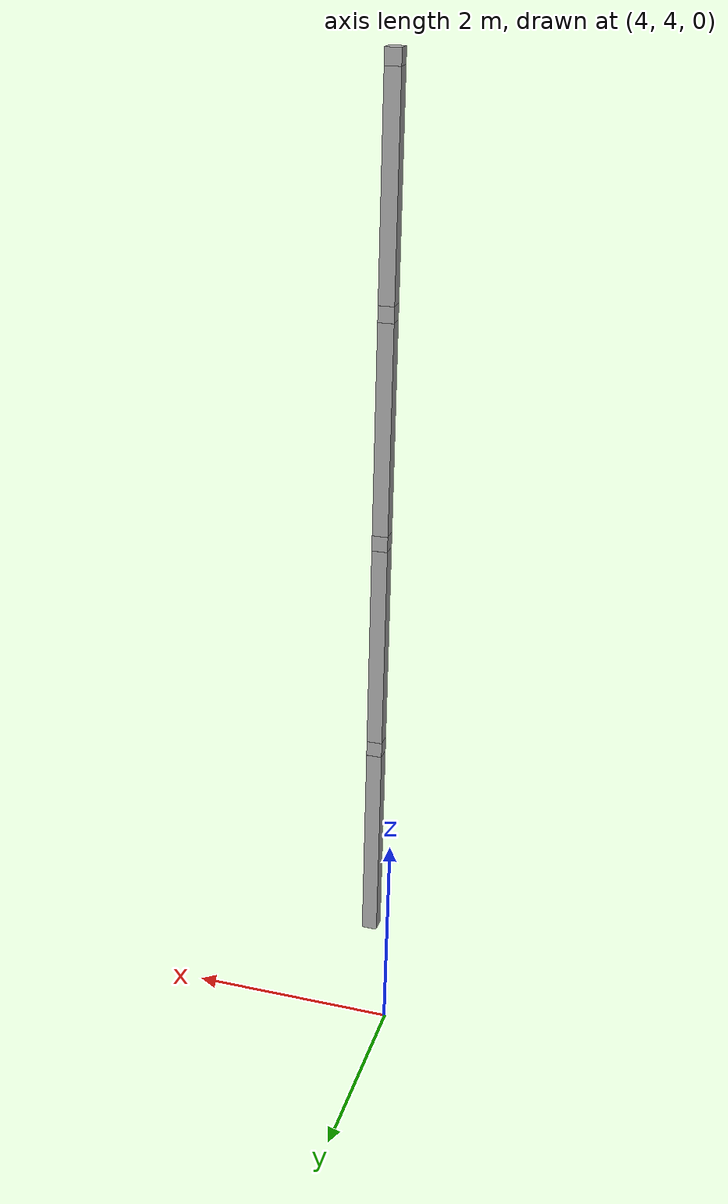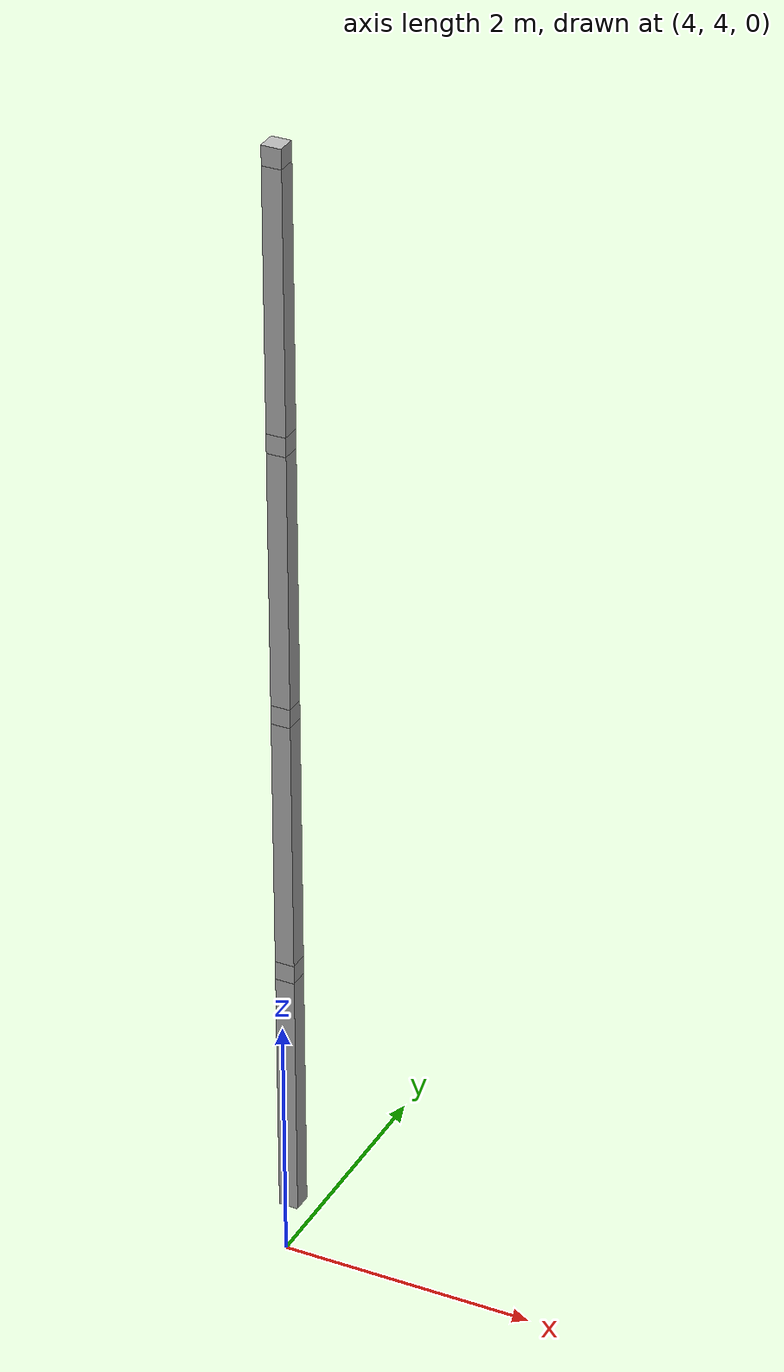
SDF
<sdf version="1.7">
 <world name="default">
  <model name="orthogonal_747_2.000.15_TS">
   <static>1</static>
   <link name="u_link_2_4_5">
    <inertial>
     <mass>1</mass>
     <inertia>
      <ixx>0.166667</ixx>
      <ixy>0</ixy>
      <ixz>0</ixz>
      <iyy>0.166667</iyy>
      <iyz>0</iyz>
      <izz>0.166667</izz>
     </inertia>
    </inertial>
    <pose>10.75 8.6 5.375 0 -0 0</pose>
    <visual name="visual_0">
     <laser_retro>2507</laser_retro>
     <geometry><box><size>0.15 1e-06 0.15</size></box></geometry>
     <material>
      <script><name>Gazebo/Grey</name><uri>file://media/materials/scripts/gazebo.material</uri></script>
      <shader type="pixel"><normal_map>__default__</normal_map></shader>
      <ambient>0.678 0.498 0.659 1</ambient>
      <diffuse>0.7 0.7 0.7 1</diffuse>
      <specular>0.01 0.01 0.01 1</specular>
      <emissive>0 0 0 1</emissive>
     </material>
     <pose>0 -0.075 0 0 -0 0</pose>
     <transparency>1</transparency>
    </visual>
    <visual name="visual_1">
     <laser_retro>2508</laser_retro>
     <geometry><box><size>0.15 1e-06 0.15</size></box></geometry>
     <material>
      <script><name>Gazebo/Grey</name><uri>file://media/materials/scripts/gazebo.material</uri></script>
      <shader type="pixel"><normal_map>__default__</normal_map></shader>
      <ambient>0.447 0.624 0.812 1</ambient>
      <diffuse>0.7 0.7 0.7 1</diffuse>
      <specular>0.01 0.01 0.01 1</specular>
      <emissive>0 0 0 1</emissive>
     </material>
     <pose>0 0.075 0 0 -0 0</pose>
     <transparency>1</transparency>
    </visual>
    <visual name="visual_2">
     <laser_retro>2509</laser_retro>
     <geometry><box><size>0.15 0.15 1e-06</size></box></geometry>
     <material>
      <script><name>Gazebo/Grey</name><uri>file://media/materials/scripts/gazebo.material</uri></script>
      <shader type="pixel"><normal_map>__default__</normal_map></shader>
      <ambient>0.988 0.686 0.243 1</ambient>
      <diffuse>0.7 0.7 0.7 1</diffuse>
      <specular>0.01 0.01 0.01 1</specular>
      <emissive>0 0 0 1</emissive>
     </material>
     <pose>0 0 -0.075 0 -0 0</pose>
     <transparency>1</transparency>
    </visual>
    <visual name="visual_3">
     <laser_retro>2510</laser_retro>
     <geometry><box><size>1e-06 0.15 0.15</size></box></geometry>
     <material>
      <script><name>Gazebo/Grey</name><uri>file://media/materials/scripts/gazebo.material</uri></script>
      <shader type="pixel"><normal_map>__default__</normal_map></shader>
      <ambient>0.988 0.914 0.31 1</ambient>
      <diffuse>0.7 0.7 0.7 1</diffuse>
      <specular>0.01 0.01 0.01 1</specular>
      <emissive>0 0 0 1</emissive>
     </material>
     <pose>0.075 0 0 0 -0 0</pose>
     <transparency>1</transparency>
    </visual>
    <visual name="visual_4">
     <laser_retro>2511</laser_retro>
     <geometry><box><size>0.15 0.15 1e-06</size></box></geometry>
     <material>
      <script><name>Gazebo/Grey</name><uri>file://media/materials/scripts/gazebo.material</uri></script>
      <shader type="pixel"><normal_map>__default__</normal_map></shader>
      <ambient>0.937 0.161 0.161 1</ambient>
      <diffuse>0.7 0.7 0.7 1</diffuse>
      <specular>0.01 0.01 0.01 1</specular>
      <emissive>0 0 0 1</emissive>
     </material>
     <pose>0 0 0.075 0 -0 0</pose>
     <transparency>1</transparency>
    </visual>
    <visual name="visual_5">
     <laser_retro>2512</laser_retro>
     <geometry><box><size>1e-06 0.15 0.15</size></box></geometry>
     <material>
      <script><name>Gazebo/Grey</name><uri>file://media/materials/scripts/gazebo.material</uri></script>
      <shader type="pixel"><normal_map>__default__</normal_map></shader>
      <ambient>0.541 0.886 0.204 1</ambient>
      <diffuse>0.7 0.7 0.7 1</diffuse>
      <specular>0.01 0.01 0.01 1</specular>
      <emissive>0 0 0 1</emissive>
     </material>
     <pose>-0.075 0 0 0 -0 0</pose>
     <transparency>1</transparency>
    </visual>
    <visual name="visual_texture">
     <geometry><box><size>0.149985 0.149985 0.149985</size></box></geometry>
     <material>
      <script>
       <uri>model://BASE_MODELS/simple_block_v2_textured/materials/scripts</uri>
       <uri>model://BASE_MODELS/simple_block_v2_textured/materials/textures</uri>
       <name>metal</name>
      </script>
     </material>
     <laser_retro>2513</laser_retro>
    </visual>
    <collision name="collision">
     <geometry><box><size>0.15 0.15 0.15</size></box></geometry>
     <surface>
      <friction>
       <ode><mu>1</mu><mu2>1</mu2><fdir1>0 0 0</fdir1><slip1>0</slip1><slip2>0</slip2></ode>
       <torsional>
        <coefficient>1</coefficient>
        <patch_radius>0</patch_radius>
        <surface_radius>0</surface_radius>
        <use_patch_radius>1</use_patch_radius>
        <ode><slip>0</slip></ode>
       </torsional>
      </friction>
      <bounce><restitution_coefficient>0</restitution_coefficient><threshold>1e+06</threshold></bounce>
      <contact>
       <collide_without_contact>0</collide_without_contact>
       <collide_without_contact_bitmask>1</collide_without_contact_bitmask>
       <collide_bitmask>1</collide_bitmask>
       <ode>
        <soft_cfm>0</soft_cfm>
        <soft_erp>0.2</soft_erp>
        <kp>1e+13</kp>
        <kd>1</kd>
        <max_vel>0.01</max_vel>
        <min_depth>0</min_depth>
       </ode>
       <bullet>
        <split_impulse>1</split_impulse>
        <split_impulse_penetration_threshold>-0.01</split_impulse_penetration_threshold>
        <soft_cfm>0</soft_cfm>
        <soft_erp>0.2</soft_erp>
        <kp>1e+13</kp>
        <kd>1</kd>
       </bullet>
      </contact>
     </surface>
    </collision>
   </link>
   <link name="z_link_2_4_5">
    <inertial>
     <mass>1</mass>
     <inertia>
      <ixx>0.166667</ixx>
      <ixy>0</ixy>
      <ixz>0</ixz>
      <iyy>0.166667</iyy>
      <iyz>0</iyz>
      <izz>0.166667</izz>
     </inertia>
    </inertial>
    <pose>10.75 8.6 4.3 0 -0 0</pose>
    <visual name="visual_0">
     <laser_retro>2514</laser_retro>
     <geometry><box><size>0.15 1e-06 2</size></box></geometry>
     <material>
      <script><name>Gazebo/Grey</name><uri>file://media/materials/scripts/gazebo.material</uri></script>
      <shader type="pixel"><normal_map>__default__</normal_map></shader>
      <ambient>0.678 0.498 0.659 1</ambient>
      <diffuse>0.7 0.7 0.7 1</diffuse>
      <specular>0.01 0.01 0.01 1</specular>
      <emissive>0 0 0 1</emissive>
     </material>
     <pose>0 -0.075 0 0 -0 0</pose>
     <transparency>1</transparency>
    </visual>
    <visual name="visual_1">
     <laser_retro>2515</laser_retro>
     <geometry><box><size>0.15 1e-06 2</size></box></geometry>
     <material>
      <script><name>Gazebo/Grey</name><uri>file://media/materials/scripts/gazebo.material</uri></script>
      <shader type="pixel"><normal_map>__default__</normal_map></shader>
      <ambient>0.447 0.624 0.812 1</ambient>
      <diffuse>0.7 0.7 0.7 1</diffuse>
      <specular>0.01 0.01 0.01 1</specular>
      <emissive>0 0 0 1</emissive>
     </material>
     <pose>0 0.075 0 0 -0 0</pose>
     <transparency>1</transparency>
    </visual>
    <visual name="visual_2">
     <laser_retro>2516</laser_retro>
     <geometry><box><size>0.15 0.15 1e-06</size></box></geometry>
     <material>
      <script><name>Gazebo/Grey</name><uri>file://media/materials/scripts/gazebo.material</uri></script>
      <shader type="pixel"><normal_map>__default__</normal_map></shader>
      <ambient>0.988 0.686 0.243 1</ambient>
      <diffuse>0.7 0.7 0.7 1</diffuse>
      <specular>0.01 0.01 0.01 1</specular>
      <emissive>0 0 0 1</emissive>
     </material>
     <pose>0 0 -1 0 -0 0</pose>
     <transparency>1</transparency>
    </visual>
    <visual name="visual_3">
     <laser_retro>2517</laser_retro>
     <geometry><box><size>1e-06 0.15 2</size></box></geometry>
     <material>
      <script><name>Gazebo/Grey</name><uri>file://media/materials/scripts/gazebo.material</uri></script>
      <shader type="pixel"><normal_map>__default__</normal_map></shader>
      <ambient>0.988 0.914 0.31 1</ambient>
      <diffuse>0.7 0.7 0.7 1</diffuse>
      <specular>0.01 0.01 0.01 1</specular>
      <emissive>0 0 0 1</emissive>
     </material>
     <pose>0.075 0 0 0 -0 0</pose>
     <transparency>1</transparency>
    </visual>
    <visual name="visual_4">
     <laser_retro>2518</laser_retro>
     <geometry><box><size>0.15 0.15 1e-06</size></box></geometry>
     <material>
      <script><name>Gazebo/Grey</name><uri>file://media/materials/scripts/gazebo.material</uri></script>
      <shader type="pixel"><normal_map>__default__</normal_map></shader>
      <ambient>0.937 0.161 0.161 1</ambient>
      <diffuse>0.7 0.7 0.7 1</diffuse>
      <specular>0.01 0.01 0.01 1</specular>
      <emissive>0 0 0 1</emissive>
     </material>
     <pose>0 0 1 0 -0 0</pose>
     <transparency>1</transparency>
    </visual>
    <visual name="visual_5">
     <laser_retro>2519</laser_retro>
     <geometry><box><size>1e-06 0.15 2</size></box></geometry>
     <material>
      <script><name>Gazebo/Grey</name><uri>file://media/materials/scripts/gazebo.material</uri></script>
      <shader type="pixel"><normal_map>__default__</normal_map></shader>
      <ambient>0.541 0.886 0.204 1</ambient>
      <diffuse>0.7 0.7 0.7 1</diffuse>
      <specular>0.01 0.01 0.01 1</specular>
      <emissive>0 0 0 1</emissive>
     </material>
     <pose>-0.075 0 0 0 -0 0</pose>
     <transparency>1</transparency>
    </visual>
    <visual name="visual_texture">
     <geometry><box><size>0.149985 0.149985 1.9998</size></box></geometry>
     <material>
      <script>
       <uri>model://BASE_MODELS/simple_block_v2_textured/materials/scripts</uri>
       <uri>model://BASE_MODELS/simple_block_v2_textured/materials/textures</uri>
       <name>metal</name>
      </script>
     </material>
     <laser_retro>2520</laser_retro>
    </visual>
    <collision name="collision">
     <geometry><box><size>0.15 0.15 2</size></box></geometry>
     <surface>
      <friction>
       <ode><mu>1</mu><mu2>1</mu2><fdir1>0 0 0</fdir1><slip1>0</slip1><slip2>0</slip2></ode>
       <torsional>
        <coefficient>1</coefficient>
        <patch_radius>0</patch_radius>
        <surface_radius>0</surface_radius>
        <use_patch_radius>1</use_patch_radius>
        <ode><slip>0</slip></ode>
       </torsional>
      </friction>
      <bounce><restitution_coefficient>0</restitution_coefficient><threshold>1e+06</threshold></bounce>
      <contact>
       <collide_without_contact>0</collide_without_contact>
       <collide_without_contact_bitmask>1</collide_without_contact_bitmask>
       <collide_bitmask>1</collide_bitmask>
       <ode>
        <soft_cfm>0</soft_cfm>
        <soft_erp>0.2</soft_erp>
        <kp>1e+13</kp>
        <kd>1</kd>
        <max_vel>0.01</max_vel>
        <min_depth>0</min_depth>
       </ode>
       <bullet>
        <split_impulse>1</split_impulse>
        <split_impulse_penetration_threshold>-0.01</split_impulse_penetration_threshold>
        <soft_cfm>0</soft_cfm>
        <soft_erp>0.2</soft_erp>
        <kp>1e+13</kp>
        <kd>1</kd>
       </bullet>
      </contact>
     </surface>
    </collision>
   </link>
   <link name="u_link_3_4_5">
    <inertial>
     <mass>1</mass>
     <inertia>
      <ixx>0.166667</ixx>
      <ixy>0</ixy>
      <ixz>0</ixz>
      <iyy>0.166667</iyy>
      <iyz>0</iyz>
      <izz>0.166667</izz>
     </inertia>
    </inertial>
    <pose>10.75 8.6 7.525 0 -0 0</pose>
    <visual name="visual_0">
     <laser_retro>3410</laser_retro>
     <geometry><box><size>0.15 1e-06 0.15</size></box></geometry>
     <material>
      <script><name>Gazebo/Grey</name><uri>file://media/materials/scripts/gazebo.material</uri></script>
      <shader type="pixel"><normal_map>__default__</normal_map></shader>
      <ambient>0.678 0.498 0.659 1</ambient>
      <diffuse>0.7 0.7 0.7 1</diffuse>
      <specular>0.01 0.01 0.01 1</specular>
      <emissive>0 0 0 1</emissive>
     </material>
     <pose>0 -0.075 0 0 -0 0</pose>
     <transparency>1</transparency>
    </visual>
    <visual name="visual_1">
     <laser_retro>3411</laser_retro>
     <geometry><box><size>0.15 1e-06 0.15</size></box></geometry>
     <material>
      <script><name>Gazebo/Grey</name><uri>file://media/materials/scripts/gazebo.material</uri></script>
      <shader type="pixel"><normal_map>__default__</normal_map></shader>
      <ambient>0.447 0.624 0.812 1</ambient>
      <diffuse>0.7 0.7 0.7 1</diffuse>
      <specular>0.01 0.01 0.01 1</specular>
      <emissive>0 0 0 1</emissive>
     </material>
     <pose>0 0.075 0 0 -0 0</pose>
     <transparency>1</transparency>
    </visual>
    <visual name="visual_2">
     <laser_retro>3412</laser_retro>
     <geometry><box><size>0.15 0.15 1e-06</size></box></geometry>
     <material>
      <script><name>Gazebo/Grey</name><uri>file://media/materials/scripts/gazebo.material</uri></script>
      <shader type="pixel"><normal_map>__default__</normal_map></shader>
      <ambient>0.988 0.686 0.243 1</ambient>
      <diffuse>0.7 0.7 0.7 1</diffuse>
      <specular>0.01 0.01 0.01 1</specular>
      <emissive>0 0 0 1</emissive>
     </material>
     <pose>0 0 -0.075 0 -0 0</pose>
     <transparency>1</transparency>
    </visual>
    <visual name="visual_3">
     <laser_retro>3413</laser_retro>
     <geometry><box><size>1e-06 0.15 0.15</size></box></geometry>
     <material>
      <script><name>Gazebo/Grey</name><uri>file://media/materials/scripts/gazebo.material</uri></script>
      <shader type="pixel"><normal_map>__default__</normal_map></shader>
      <ambient>0.988 0.914 0.31 1</ambient>
      <diffuse>0.7 0.7 0.7 1</diffuse>
      <specular>0.01 0.01 0.01 1</specular>
      <emissive>0 0 0 1</emissive>
     </material>
     <pose>0.075 0 0 0 -0 0</pose>
     <transparency>1</transparency>
    </visual>
    <visual name="visual_4">
     <laser_retro>3414</laser_retro>
     <geometry><box><size>0.15 0.15 1e-06</size></box></geometry>
     <material>
      <script><name>Gazebo/Grey</name><uri>file://media/materials/scripts/gazebo.material</uri></script>
      <shader type="pixel"><normal_map>__default__</normal_map></shader>
      <ambient>0.937 0.161 0.161 1</ambient>
      <diffuse>0.7 0.7 0.7 1</diffuse>
      <specular>0.01 0.01 0.01 1</specular>
      <emissive>0 0 0 1</emissive>
     </material>
     <pose>0 0 0.075 0 -0 0</pose>
     <transparency>1</transparency>
    </visual>
    <visual name="visual_5">
     <laser_retro>3415</laser_retro>
     <geometry><box><size>1e-06 0.15 0.15</size></box></geometry>
     <material>
      <script><name>Gazebo/Grey</name><uri>file://media/materials/scripts/gazebo.material</uri></script>
      <shader type="pixel"><normal_map>__default__</normal_map></shader>
      <ambient>0.541 0.886 0.204 1</ambient>
      <diffuse>0.7 0.7 0.7 1</diffuse>
      <specular>0.01 0.01 0.01 1</specular>
      <emissive>0 0 0 1</emissive>
     </material>
     <pose>-0.075 0 0 0 -0 0</pose>
     <transparency>1</transparency>
    </visual>
    <visual name="visual_texture">
     <geometry><box><size>0.149985 0.149985 0.149985</size></box></geometry>
     <material>
      <script>
       <uri>model://BASE_MODELS/simple_block_v2_textured/materials/scripts</uri>
       <uri>model://BASE_MODELS/simple_block_v2_textured/materials/textures</uri>
       <name>metal</name>
      </script>
     </material>
     <laser_retro>3416</laser_retro>
    </visual>
    <collision name="collision">
     <geometry><box><size>0.15 0.15 0.15</size></box></geometry>
     <surface>
      <friction>
       <ode><mu>1</mu><mu2>1</mu2><fdir1>0 0 0</fdir1><slip1>0</slip1><slip2>0</slip2></ode>
       <torsional>
        <coefficient>1</coefficient>
        <patch_radius>0</patch_radius>
        <surface_radius>0</surface_radius>
        <use_patch_radius>1</use_patch_radius>
        <ode><slip>0</slip></ode>
       </torsional>
      </friction>
      <bounce><restitution_coefficient>0</restitution_coefficient><threshold>1e+06</threshold></bounce>
      <contact>
       <collide_without_contact>0</collide_without_contact>
       <collide_without_contact_bitmask>1</collide_without_contact_bitmask>
       <collide_bitmask>1</collide_bitmask>
       <ode>
        <soft_cfm>0</soft_cfm>
        <soft_erp>0.2</soft_erp>
        <kp>1e+13</kp>
        <kd>1</kd>
        <max_vel>0.01</max_vel>
        <min_depth>0</min_depth>
       </ode>
       <bullet>
        <split_impulse>1</split_impulse>
        <split_impulse_penetration_threshold>-0.01</split_impulse_penetration_threshold>
        <soft_cfm>0</soft_cfm>
        <soft_erp>0.2</soft_erp>
        <kp>1e+13</kp>
        <kd>1</kd>
       </bullet>
      </contact>
     </surface>
    </collision>
   </link>
   <link name="z_link_3_4_5">
    <inertial>
     <mass>1</mass>
     <inertia>
      <ixx>0.166667</ixx>
      <ixy>0</ixy>
      <ixz>0</ixz>
      <iyy>0.166667</iyy>
      <iyz>0</iyz>
      <izz>0.166667</izz>
     </inertia>
    </inertial>
    <pose>10.75 8.6 6.45 0 -0 0</pose>
    <visual name="visual_0">
     <laser_retro>3417</laser_retro>
     <geometry><box><size>0.15 1e-06 2</size></box></geometry>
     <material>
      <script><name>Gazebo/Grey</name><uri>file://media/materials/scripts/gazebo.material</uri></script>
      <shader type="pixel"><normal_map>__default__</normal_map></shader>
      <ambient>0.678 0.498 0.659 1</ambient>
      <diffuse>0.7 0.7 0.7 1</diffuse>
      <specular>0.01 0.01 0.01 1</specular>
      <emissive>0 0 0 1</emissive>
     </material>
     <pose>0 -0.075 0 0 -0 0</pose>
     <transparency>1</transparency>
    </visual>
    <visual name="visual_1">
     <laser_retro>3418</laser_retro>
     <geometry><box><size>0.15 1e-06 2</size></box></geometry>
     <material>
      <script><name>Gazebo/Grey</name><uri>file://media/materials/scripts/gazebo.material</uri></script>
      <shader type="pixel"><normal_map>__default__</normal_map></shader>
      <ambient>0.447 0.624 0.812 1</ambient>
      <diffuse>0.7 0.7 0.7 1</diffuse>
      <specular>0.01 0.01 0.01 1</specular>
      <emissive>0 0 0 1</emissive>
     </material>
     <pose>0 0.075 0 0 -0 0</pose>
     <transparency>1</transparency>
    </visual>
    <visual name="visual_2">
     <laser_retro>3419</laser_retro>
     <geometry><box><size>0.15 0.15 1e-06</size></box></geometry>
     <material>
      <script><name>Gazebo/Grey</name><uri>file://media/materials/scripts/gazebo.material</uri></script>
      <shader type="pixel"><normal_map>__default__</normal_map></shader>
      <ambient>0.988 0.686 0.243 1</ambient>
      <diffuse>0.7 0.7 0.7 1</diffuse>
      <specular>0.01 0.01 0.01 1</specular>
      <emissive>0 0 0 1</emissive>
     </material>
     <pose>0 0 -1 0 -0 0</pose>
     <transparency>1</transparency>
    </visual>
    <visual name="visual_3">
     <laser_retro>3420</laser_retro>
     <geometry><box><size>1e-06 0.15 2</size></box></geometry>
     <material>
      <script><name>Gazebo/Grey</name><uri>file://media/materials/scripts/gazebo.material</uri></script>
      <shader type="pixel"><normal_map>__default__</normal_map></shader>
      <ambient>0.988 0.914 0.31 1</ambient>
      <diffuse>0.7 0.7 0.7 1</diffuse>
      <specular>0.01 0.01 0.01 1</specular>
      <emissive>0 0 0 1</emissive>
     </material>
     <pose>0.075 0 0 0 -0 0</pose>
     <transparency>1</transparency>
    </visual>
    <visual name="visual_4">
     <laser_retro>3421</laser_retro>
     <geometry><box><size>0.15 0.15 1e-06</size></box></geometry>
     <material>
      <script><name>Gazebo/Grey</name><uri>file://media/materials/scripts/gazebo.material</uri></script>
      <shader type="pixel"><normal_map>__default__</normal_map></shader>
      <ambient>0.937 0.161 0.161 1</ambient>
      <diffuse>0.7 0.7 0.7 1</diffuse>
      <specular>0.01 0.01 0.01 1</specular>
      <emissive>0 0 0 1</emissive>
     </material>
     <pose>0 0 1 0 -0 0</pose>
     <transparency>1</transparency>
    </visual>
    <visual name="visual_5">
     <laser_retro>3422</laser_retro>
     <geometry><box><size>1e-06 0.15 2</size></box></geometry>
     <material>
      <script><name>Gazebo/Grey</name><uri>file://media/materials/scripts/gazebo.material</uri></script>
      <shader type="pixel"><normal_map>__default__</normal_map></shader>
      <ambient>0.541 0.886 0.204 1</ambient>
      <diffuse>0.7 0.7 0.7 1</diffuse>
      <specular>0.01 0.01 0.01 1</specular>
      <emissive>0 0 0 1</emissive>
     </material>
     <pose>-0.075 0 0 0 -0 0</pose>
     <transparency>1</transparency>
    </visual>
    <visual name="visual_texture">
     <geometry><box><size>0.149985 0.149985 1.9998</size></box></geometry>
     <material>
      <script>
       <uri>model://BASE_MODELS/simple_block_v2_textured/materials/scripts</uri>
       <uri>model://BASE_MODELS/simple_block_v2_textured/materials/textures</uri>
       <name>metal</name>
      </script>
     </material>
     <laser_retro>3423</laser_retro>
    </visual>
    <collision name="collision">
     <geometry><box><size>0.15 0.15 2</size></box></geometry>
     <surface>
      <friction>
       <ode><mu>1</mu><mu2>1</mu2><fdir1>0 0 0</fdir1><slip1>0</slip1><slip2>0</slip2></ode>
       <torsional>
        <coefficient>1</coefficient>
        <patch_radius>0</patch_radius>
        <surface_radius>0</surface_radius>
        <use_patch_radius>1</use_patch_radius>
        <ode><slip>0</slip></ode>
       </torsional>
      </friction>
      <bounce><restitution_coefficient>0</restitution_coefficient><threshold>1e+06</threshold></bounce>
      <contact>
       <collide_without_contact>0</collide_without_contact>
       <collide_without_contact_bitmask>1</collide_without_contact_bitmask>
       <collide_bitmask>1</collide_bitmask>
       <ode>
        <soft_cfm>0</soft_cfm>
        <soft_erp>0.2</soft_erp>
        <kp>1e+13</kp>
        <kd>1</kd>
        <max_vel>0.01</max_vel>
        <min_depth>0</min_depth>
       </ode>
       <bullet>
        <split_impulse>1</split_impulse>
        <split_impulse_penetration_threshold>-0.01</split_impulse_penetration_threshold>
        <soft_cfm>0</soft_cfm>
        <soft_erp>0.2</soft_erp>
        <kp>1e+13</kp>
        <kd>1</kd>
       </bullet>
      </contact>
     </surface>
    </collision>
   </link>
   <link name="u_link_4_4_5">
    <inertial>
     <mass>1</mass>
     <inertia>
      <ixx>0.166667</ixx>
      <ixy>0</ixy>
      <ixz>0</ixz>
      <iyy>0.166667</iyy>
      <iyz>0</iyz>
      <izz>0.166667</izz>
     </inertia>
    </inertial>
    <pose>10.75 8.6 9.675 0 -0 0</pose>
    <visual name="visual_0">
     <laser_retro>4313</laser_retro>
     <geometry><box><size>0.15 1e-06 0.15</size></box></geometry>
     <material>
      <script><name>Gazebo/Grey</name><uri>file://media/materials/scripts/gazebo.material</uri></script>
      <shader type="pixel"><normal_map>__default__</normal_map></shader>
      <ambient>0.678 0.498 0.659 1</ambient>
      <diffuse>0.7 0.7 0.7 1</diffuse>
      <specular>0.01 0.01 0.01 1</specular>
      <emissive>0 0 0 1</emissive>
     </material>
     <pose>0 -0.075 0 0 -0 0</pose>
     <transparency>1</transparency>
    </visual>
    <visual name="visual_1">
     <laser_retro>4314</laser_retro>
     <geometry><box><size>0.15 1e-06 0.15</size></box></geometry>
     <material>
      <script><name>Gazebo/Grey</name><uri>file://media/materials/scripts/gazebo.material</uri></script>
      <shader type="pixel"><normal_map>__default__</normal_map></shader>
      <ambient>0.447 0.624 0.812 1</ambient>
      <diffuse>0.7 0.7 0.7 1</diffuse>
      <specular>0.01 0.01 0.01 1</specular>
      <emissive>0 0 0 1</emissive>
     </material>
     <pose>0 0.075 0 0 -0 0</pose>
     <transparency>1</transparency>
    </visual>
    <visual name="visual_2">
     <laser_retro>4315</laser_retro>
     <geometry><box><size>0.15 0.15 1e-06</size></box></geometry>
     <material>
      <script><name>Gazebo/Grey</name><uri>file://media/materials/scripts/gazebo.material</uri></script>
      <shader type="pixel"><normal_map>__default__</normal_map></shader>
      <ambient>0.988 0.686 0.243 1</ambient>
      <diffuse>0.7 0.7 0.7 1</diffuse>
      <specular>0.01 0.01 0.01 1</specular>
      <emissive>0 0 0 1</emissive>
     </material>
     <pose>0 0 -0.075 0 -0 0</pose>
     <transparency>1</transparency>
    </visual>
    <visual name="visual_3">
     <laser_retro>4316</laser_retro>
     <geometry><box><size>1e-06 0.15 0.15</size></box></geometry>
     <material>
      <script><name>Gazebo/Grey</name><uri>file://media/materials/scripts/gazebo.material</uri></script>
      <shader type="pixel"><normal_map>__default__</normal_map></shader>
      <ambient>0.988 0.914 0.31 1</ambient>
      <diffuse>0.7 0.7 0.7 1</diffuse>
      <specular>0.01 0.01 0.01 1</specular>
      <emissive>0 0 0 1</emissive>
     </material>
     <pose>0.075 0 0 0 -0 0</pose>
     <transparency>1</transparency>
    </visual>
    <visual name="visual_4">
     <laser_retro>4317</laser_retro>
     <geometry><box><size>0.15 0.15 1e-06</size></box></geometry>
     <material>
      <script><name>Gazebo/Grey</name><uri>file://media/materials/scripts/gazebo.material</uri></script>
      <shader type="pixel"><normal_map>__default__</normal_map></shader>
      <ambient>0.937 0.161 0.161 1</ambient>
      <diffuse>0.7 0.7 0.7 1</diffuse>
      <specular>0.01 0.01 0.01 1</specular>
      <emissive>0 0 0 1</emissive>
     </material>
     <pose>0 0 0.075 0 -0 0</pose>
     <transparency>1</transparency>
    </visual>
    <visual name="visual_5">
     <laser_retro>4318</laser_retro>
     <geometry><box><size>1e-06 0.15 0.15</size></box></geometry>
     <material>
      <script><name>Gazebo/Grey</name><uri>file://media/materials/scripts/gazebo.material</uri></script>
      <shader type="pixel"><normal_map>__default__</normal_map></shader>
      <ambient>0.541 0.886 0.204 1</ambient>
      <diffuse>0.7 0.7 0.7 1</diffuse>
      <specular>0.01 0.01 0.01 1</specular>
      <emissive>0 0 0 1</emissive>
     </material>
     <pose>-0.075 0 0 0 -0 0</pose>
     <transparency>1</transparency>
    </visual>
    <visual name="visual_texture">
     <geometry><box><size>0.149985 0.149985 0.149985</size></box></geometry>
     <material>
      <script>
       <uri>model://BASE_MODELS/simple_block_v2_textured/materials/scripts</uri>
       <uri>model://BASE_MODELS/simple_block_v2_textured/materials/textures</uri>
       <name>metal</name>
      </script>
     </material>
     <laser_retro>4319</laser_retro>
    </visual>
    <collision name="collision">
     <geometry><box><size>0.15 0.15 0.15</size></box></geometry>
     <surface>
      <friction>
       <ode><mu>1</mu><mu2>1</mu2><fdir1>0 0 0</fdir1><slip1>0</slip1><slip2>0</slip2></ode>
       <torsional>
        <coefficient>1</coefficient>
        <patch_radius>0</patch_radius>
        <surface_radius>0</surface_radius>
        <use_patch_radius>1</use_patch_radius>
        <ode><slip>0</slip></ode>
       </torsional>
      </friction>
      <bounce><restitution_coefficient>0</restitution_coefficient><threshold>1e+06</threshold></bounce>
      <contact>
       <collide_without_contact>0</collide_without_contact>
       <collide_without_contact_bitmask>1</collide_without_contact_bitmask>
       <collide_bitmask>1</collide_bitmask>
       <ode>
        <soft_cfm>0</soft_cfm>
        <soft_erp>0.2</soft_erp>
        <kp>1e+13</kp>
        <kd>1</kd>
        <max_vel>0.01</max_vel>
        <min_depth>0</min_depth>
       </ode>
       <bullet>
        <split_impulse>1</split_impulse>
        <split_impulse_penetration_threshold>-0.01</split_impulse_penetration_threshold>
        <soft_cfm>0</soft_cfm>
        <soft_erp>0.2</soft_erp>
        <kp>1e+13</kp>
        <kd>1</kd>
       </bullet>
      </contact>
     </surface>
    </collision>
   </link>
   <link name="z_link_4_4_5">
    <inertial>
     <mass>1</mass>
     <inertia>
      <ixx>0.166667</ixx>
      <ixy>0</ixy>
      <ixz>0</ixz>
      <iyy>0.166667</iyy>
      <iyz>0</iyz>
      <izz>0.166667</izz>
     </inertia>
    </inertial>
    <pose>10.75 8.6 8.6 0 -0 0</pose>
    <visual name="visual_0">
     <laser_retro>4320</laser_retro>
     <geometry><box><size>0.15 1e-06 2</size></box></geometry>
     <material>
      <script><name>Gazebo/Grey</name><uri>file://media/materials/scripts/gazebo.material</uri></script>
      <shader type="pixel"><normal_map>__default__</normal_map></shader>
      <ambient>0.678 0.498 0.659 1</ambient>
      <diffuse>0.7 0.7 0.7 1</diffuse>
      <specular>0.01 0.01 0.01 1</specular>
      <emissive>0 0 0 1</emissive>
     </material>
     <pose>0 -0.075 0 0 -0 0</pose>
     <transparency>1</transparency>
    </visual>
    <visual name="visual_1">
     <laser_retro>4321</laser_retro>
     <geometry><box><size>0.15 1e-06 2</size></box></geometry>
     <material>
      <script><name>Gazebo/Grey</name><uri>file://media/materials/scripts/gazebo.material</uri></script>
      <shader type="pixel"><normal_map>__default__</normal_map></shader>
      <ambient>0.447 0.624 0.812 1</ambient>
      <diffuse>0.7 0.7 0.7 1</diffuse>
      <specular>0.01 0.01 0.01 1</specular>
      <emissive>0 0 0 1</emissive>
     </material>
     <pose>0 0.075 0 0 -0 0</pose>
     <transparency>1</transparency>
    </visual>
    <visual name="visual_2">
     <laser_retro>4322</laser_retro>
     <geometry><box><size>0.15 0.15 1e-06</size></box></geometry>
     <material>
      <script><name>Gazebo/Grey</name><uri>file://media/materials/scripts/gazebo.material</uri></script>
      <shader type="pixel"><normal_map>__default__</normal_map></shader>
      <ambient>0.988 0.686 0.243 1</ambient>
      <diffuse>0.7 0.7 0.7 1</diffuse>
      <specular>0.01 0.01 0.01 1</specular>
      <emissive>0 0 0 1</emissive>
     </material>
     <pose>0 0 -1 0 -0 0</pose>
     <transparency>1</transparency>
    </visual>
    <visual name="visual_3">
     <laser_retro>4323</laser_retro>
     <geometry><box><size>1e-06 0.15 2</size></box></geometry>
     <material>
      <script><name>Gazebo/Grey</name><uri>file://media/materials/scripts/gazebo.material</uri></script>
      <shader type="pixel"><normal_map>__default__</normal_map></shader>
      <ambient>0.988 0.914 0.31 1</ambient>
      <diffuse>0.7 0.7 0.7 1</diffuse>
      <specular>0.01 0.01 0.01 1</specular>
      <emissive>0 0 0 1</emissive>
     </material>
     <pose>0.075 0 0 0 -0 0</pose>
     <transparency>1</transparency>
    </visual>
    <visual name="visual_4">
     <laser_retro>4324</laser_retro>
     <geometry><box><size>0.15 0.15 1e-06</size></box></geometry>
     <material>
      <script><name>Gazebo/Grey</name><uri>file://media/materials/scripts/gazebo.material</uri></script>
      <shader type="pixel"><normal_map>__default__</normal_map></shader>
      <ambient>0.937 0.161 0.161 1</ambient>
      <diffuse>0.7 0.7 0.7 1</diffuse>
      <specular>0.01 0.01 0.01 1</specular>
      <emissive>0 0 0 1</emissive>
     </material>
     <pose>0 0 1 0 -0 0</pose>
     <transparency>1</transparency>
    </visual>
    <visual name="visual_5">
     <laser_retro>4325</laser_retro>
     <geometry><box><size>1e-06 0.15 2</size></box></geometry>
     <material>
      <script><name>Gazebo/Grey</name><uri>file://media/materials/scripts/gazebo.material</uri></script>
      <shader type="pixel"><normal_map>__default__</normal_map></shader>
      <ambient>0.541 0.886 0.204 1</ambient>
      <diffuse>0.7 0.7 0.7 1</diffuse>
      <specular>0.01 0.01 0.01 1</specular>
      <emissive>0 0 0 1</emissive>
     </material>
     <pose>-0.075 0 0 0 -0 0</pose>
     <transparency>1</transparency>
    </visual>
    <visual name="visual_texture">
     <geometry><box><size>0.149985 0.149985 1.9998</size></box></geometry>
     <material>
      <script>
       <uri>model://BASE_MODELS/simple_block_v2_textured/materials/scripts</uri>
       <uri>model://BASE_MODELS/simple_block_v2_textured/materials/textures</uri>
       <name>metal</name>
      </script>
     </material>
     <laser_retro>4326</laser_retro>
    </visual>
    <collision name="collision">
     <geometry><box><size>0.15 0.15 2</size></box></geometry>
     <surface>
      <friction>
       <ode><mu>1</mu><mu2>1</mu2><fdir1>0 0 0</fdir1><slip1>0</slip1><slip2>0</slip2></ode>
       <torsional>
        <coefficient>1</coefficient>
        <patch_radius>0</patch_radius>
        <surface_radius>0</surface_radius>
        <use_patch_radius>1</use_patch_radius>
        <ode><slip>0</slip></ode>
       </torsional>
      </friction>
      <bounce><restitution_coefficient>0</restitution_coefficient><threshold>1e+06</threshold></bounce>
      <contact>
       <collide_without_contact>0</collide_without_contact>
       <collide_without_contact_bitmask>1</collide_without_contact_bitmask>
       <collide_bitmask>1</collide_bitmask>
       <ode>
        <soft_cfm>0</soft_cfm>
        <soft_erp>0.2</soft_erp>
        <kp>1e+13</kp>
        <kd>1</kd>
        <max_vel>0.01</max_vel>
        <min_depth>0</min_depth>
       </ode>
       <bullet>
        <split_impulse>1</split_impulse>
        <split_impulse_penetration_threshold>-0.01</split_impulse_penetration_threshold>
        <soft_cfm>0</soft_cfm>
        <soft_erp>0.2</soft_erp>
        <kp>1e+13</kp>
        <kd>1</kd>
       </bullet>
      </contact>
     </surface>
    </collision>
   </link>
   <link name="u_link_5_4_5">
    <inertial>
     <mass>1</mass>
     <inertia>
      <ixx>0.166667</ixx>
      <ixy>0</ixy>
      <ixz>0</ixz>
      <iyy>0.166667</iyy>
      <iyz>0</iyz>
      <izz>0.166667</izz>
     </inertia>
    </inertial>
    <pose>10.75 8.6 11.825 0 -0 0</pose>
    <visual name="visual_0">
     <laser_retro>5216</laser_retro>
     <geometry><box><size>0.15 1e-06 0.15</size></box></geometry>
     <material>
      <script><name>Gazebo/Grey</name><uri>file://media/materials/scripts/gazebo.material</uri></script>
      <shader type="pixel"><normal_map>__default__</normal_map></shader>
      <ambient>0.678 0.498 0.659 1</ambient>
      <diffuse>0.7 0.7 0.7 1</diffuse>
      <specular>0.01 0.01 0.01 1</specular>
      <emissive>0 0 0 1</emissive>
     </material>
     <pose>0 -0.075 0 0 -0 0</pose>
     <transparency>1</transparency>
    </visual>
    <visual name="visual_1">
     <laser_retro>5217</laser_retro>
     <geometry><box><size>0.15 1e-06 0.15</size></box></geometry>
     <material>
      <script><name>Gazebo/Grey</name><uri>file://media/materials/scripts/gazebo.material</uri></script>
      <shader type="pixel"><normal_map>__default__</normal_map></shader>
      <ambient>0.447 0.624 0.812 1</ambient>
      <diffuse>0.7 0.7 0.7 1</diffuse>
      <specular>0.01 0.01 0.01 1</specular>
      <emissive>0 0 0 1</emissive>
     </material>
     <pose>0 0.075 0 0 -0 0</pose>
     <transparency>1</transparency>
    </visual>
    <visual name="visual_2">
     <laser_retro>5218</laser_retro>
     <geometry><box><size>0.15 0.15 1e-06</size></box></geometry>
     <material>
      <script><name>Gazebo/Grey</name><uri>file://media/materials/scripts/gazebo.material</uri></script>
      <shader type="pixel"><normal_map>__default__</normal_map></shader>
      <ambient>0.988 0.686 0.243 1</ambient>
      <diffuse>0.7 0.7 0.7 1</diffuse>
      <specular>0.01 0.01 0.01 1</specular>
      <emissive>0 0 0 1</emissive>
     </material>
     <pose>0 0 -0.075 0 -0 0</pose>
     <transparency>1</transparency>
    </visual>
    <visual name="visual_3">
     <laser_retro>5219</laser_retro>
     <geometry><box><size>1e-06 0.15 0.15</size></box></geometry>
     <material>
      <script><name>Gazebo/Grey</name><uri>file://media/materials/scripts/gazebo.material</uri></script>
      <shader type="pixel"><normal_map>__default__</normal_map></shader>
      <ambient>0.988 0.914 0.31 1</ambient>
      <diffuse>0.7 0.7 0.7 1</diffuse>
      <specular>0.01 0.01 0.01 1</specular>
      <emissive>0 0 0 1</emissive>
     </material>
     <pose>0.075 0 0 0 -0 0</pose>
     <transparency>1</transparency>
    </visual>
    <visual name="visual_4">
     <laser_retro>5220</laser_retro>
     <geometry><box><size>0.15 0.15 1e-06</size></box></geometry>
     <material>
      <script><name>Gazebo/Grey</name><uri>file://media/materials/scripts/gazebo.material</uri></script>
      <shader type="pixel"><normal_map>__default__</normal_map></shader>
      <ambient>0.937 0.161 0.161 1</ambient>
      <diffuse>0.7 0.7 0.7 1</diffuse>
      <specular>0.01 0.01 0.01 1</specular>
      <emissive>0 0 0 1</emissive>
     </material>
     <pose>0 0 0.075 0 -0 0</pose>
     <transparency>1</transparency>
    </visual>
    <visual name="visual_5">
     <laser_retro>5221</laser_retro>
     <geometry><box><size>1e-06 0.15 0.15</size></box></geometry>
     <material>
      <script><name>Gazebo/Grey</name><uri>file://media/materials/scripts/gazebo.material</uri></script>
      <shader type="pixel"><normal_map>__default__</normal_map></shader>
      <ambient>0.541 0.886 0.204 1</ambient>
      <diffuse>0.7 0.7 0.7 1</diffuse>
      <specular>0.01 0.01 0.01 1</specular>
      <emissive>0 0 0 1</emissive>
     </material>
     <pose>-0.075 0 0 0 -0 0</pose>
     <transparency>1</transparency>
    </visual>
    <visual name="visual_texture">
     <geometry><box><size>0.149985 0.149985 0.149985</size></box></geometry>
     <material>
      <script>
       <uri>model://BASE_MODELS/simple_block_v2_textured/materials/scripts</uri>
       <uri>model://BASE_MODELS/simple_block_v2_textured/materials/textures</uri>
       <name>metal</name>
      </script>
     </material>
     <laser_retro>5222</laser_retro>
    </visual>
    <collision name="collision">
     <geometry><box><size>0.15 0.15 0.15</size></box></geometry>
     <surface>
      <friction>
       <ode><mu>1</mu><mu2>1</mu2><fdir1>0 0 0</fdir1><slip1>0</slip1><slip2>0</slip2></ode>
       <torsional>
        <coefficient>1</coefficient>
        <patch_radius>0</patch_radius>
        <surface_radius>0</surface_radius>
        <use_patch_radius>1</use_patch_radius>
        <ode><slip>0</slip></ode>
       </torsional>
      </friction>
      <bounce><restitution_coefficient>0</restitution_coefficient><threshold>1e+06</threshold></bounce>
      <contact>
       <collide_without_contact>0</collide_without_contact>
       <collide_without_contact_bitmask>1</collide_without_contact_bitmask>
       <collide_bitmask>1</collide_bitmask>
       <ode>
        <soft_cfm>0</soft_cfm>
        <soft_erp>0.2</soft_erp>
        <kp>1e+13</kp>
        <kd>1</kd>
        <max_vel>0.01</max_vel>
        <min_depth>0</min_depth>
       </ode>
       <bullet>
        <split_impulse>1</split_impulse>
        <split_impulse_penetration_threshold>-0.01</split_impulse_penetration_threshold>
        <soft_cfm>0</soft_cfm>
        <soft_erp>0.2</soft_erp>
        <kp>1e+13</kp>
        <kd>1</kd>
       </bullet>
      </contact>
     </surface>
    </collision>
   </link>
   <link name="z_link_5_4_5">
    <inertial>
     <mass>1</mass>
     <inertia>
      <ixx>0.166667</ixx>
      <ixy>0</ixy>
      <ixz>0</ixz>
      <iyy>0.166667</iyy>
      <iyz>0</iyz>
      <izz>0.166667</izz>
     </inertia>
    </inertial>
    <pose>10.75 8.6 10.75 0 -0 0</pose>
    <visual name="visual_0">
     <laser_retro>5223</laser_retro>
     <geometry><box><size>0.15 1e-06 2</size></box></geometry>
     <material>
      <script><name>Gazebo/Grey</name><uri>file://media/materials/scripts/gazebo.material</uri></script>
      <shader type="pixel"><normal_map>__default__</normal_map></shader>
      <ambient>0.678 0.498 0.659 1</ambient>
      <diffuse>0.7 0.7 0.7 1</diffuse>
      <specular>0.01 0.01 0.01 1</specular>
      <emissive>0 0 0 1</emissive>
     </material>
     <pose>0 -0.075 0 0 -0 0</pose>
     <transparency>1</transparency>
    </visual>
    <visual name="visual_1">
     <laser_retro>5224</laser_retro>
     <geometry><box><size>0.15 1e-06 2</size></box></geometry>
     <material>
      <script><name>Gazebo/Grey</name><uri>file://media/materials/scripts/gazebo.material</uri></script>
      <shader type="pixel"><normal_map>__default__</normal_map></shader>
      <ambient>0.447 0.624 0.812 1</ambient>
      <diffuse>0.7 0.7 0.7 1</diffuse>
      <specular>0.01 0.01 0.01 1</specular>
      <emissive>0 0 0 1</emissive>
     </material>
     <pose>0 0.075 0 0 -0 0</pose>
     <transparency>1</transparency>
    </visual>
    <visual name="visual_2">
     <laser_retro>5225</laser_retro>
     <geometry><box><size>0.15 0.15 1e-06</size></box></geometry>
     <material>
      <script><name>Gazebo/Grey</name><uri>file://media/materials/scripts/gazebo.material</uri></script>
      <shader type="pixel"><normal_map>__default__</normal_map></shader>
      <ambient>0.988 0.686 0.243 1</ambient>
      <diffuse>0.7 0.7 0.7 1</diffuse>
      <specular>0.01 0.01 0.01 1</specular>
      <emissive>0 0 0 1</emissive>
     </material>
     <pose>0 0 -1 0 -0 0</pose>
     <transparency>1</transparency>
    </visual>
    <visual name="visual_3">
     <laser_retro>5226</laser_retro>
     <geometry><box><size>1e-06 0.15 2</size></box></geometry>
     <material>
      <script><name>Gazebo/Grey</name><uri>file://media/materials/scripts/gazebo.material</uri></script>
      <shader type="pixel"><normal_map>__default__</normal_map></shader>
      <ambient>0.988 0.914 0.31 1</ambient>
      <diffuse>0.7 0.7 0.7 1</diffuse>
      <specular>0.01 0.01 0.01 1</specular>
      <emissive>0 0 0 1</emissive>
     </material>
     <pose>0.075 0 0 0 -0 0</pose>
     <transparency>1</transparency>
    </visual>
    <visual name="visual_4">
     <laser_retro>5227</laser_retro>
     <geometry><box><size>0.15 0.15 1e-06</size></box></geometry>
     <material>
      <script><name>Gazebo/Grey</name><uri>file://media/materials/scripts/gazebo.material</uri></script>
      <shader type="pixel"><normal_map>__default__</normal_map></shader>
      <ambient>0.937 0.161 0.161 1</ambient>
      <diffuse>0.7 0.7 0.7 1</diffuse>
      <specular>0.01 0.01 0.01 1</specular>
      <emissive>0 0 0 1</emissive>
     </material>
     <pose>0 0 1 0 -0 0</pose>
     <transparency>1</transparency>
    </visual>
    <visual name="visual_5">
     <laser_retro>5228</laser_retro>
     <geometry><box><size>1e-06 0.15 2</size></box></geometry>
     <material>
      <script><name>Gazebo/Grey</name><uri>file://media/materials/scripts/gazebo.material</uri></script>
      <shader type="pixel"><normal_map>__default__</normal_map></shader>
      <ambient>0.541 0.886 0.204 1</ambient>
      <diffuse>0.7 0.7 0.7 1</diffuse>
      <specular>0.01 0.01 0.01 1</specular>
      <emissive>0 0 0 1</emissive>
     </material>
     <pose>-0.075 0 0 0 -0 0</pose>
     <transparency>1</transparency>
    </visual>
    <visual name="visual_texture">
     <geometry><box><size>0.149985 0.149985 1.9998</size></box></geometry>
     <material>
      <script>
       <uri>model://BASE_MODELS/simple_block_v2_textured/materials/scripts</uri>
       <uri>model://BASE_MODELS/simple_block_v2_textured/materials/textures</uri>
       <name>metal</name>
      </script>
     </material>
     <laser_retro>5229</laser_retro>
    </visual>
    <collision name="collision">
     <geometry><box><size>0.15 0.15 2</size></box></geometry>
     <surface>
      <friction>
       <ode><mu>1</mu><mu2>1</mu2><fdir1>0 0 0</fdir1><slip1>0</slip1><slip2>0</slip2></ode>
       <torsional>
        <coefficient>1</coefficient>
        <patch_radius>0</patch_radius>
        <surface_radius>0</surface_radius>
        <use_patch_radius>1</use_patch_radius>
        <ode><slip>0</slip></ode>
       </torsional>
      </friction>
      <bounce><restitution_coefficient>0</restitution_coefficient><threshold>1e+06</threshold></bounce>
      <contact>
       <collide_without_contact>0</collide_without_contact>
       <collide_without_contact_bitmask>1</collide_without_contact_bitmask>
       <collide_bitmask>1</collide_bitmask>
       <ode>
        <soft_cfm>0</soft_cfm>
        <soft_erp>0.2</soft_erp>
        <kp>1e+13</kp>
        <kd>1</kd>
        <max_vel>0.01</max_vel>
        <min_depth>0</min_depth>
       </ode>
       <bullet>
        <split_impulse>1</split_impulse>
        <split_impulse_penetration_threshold>-0.01</split_impulse_penetration_threshold>
        <soft_cfm>0</soft_cfm>
        <soft_erp>0.2</soft_erp>
        <kp>1e+13</kp>
        <kd>1</kd>
       </bullet>
      </contact>
     </surface>
    </collision>
   </link>
   <pose>-6.47624 -5 -2.5 0 -0 0</pose>
  </model>
 </world>
</sdf>
